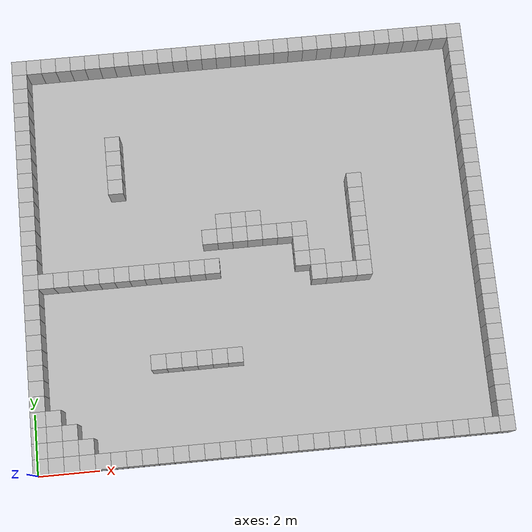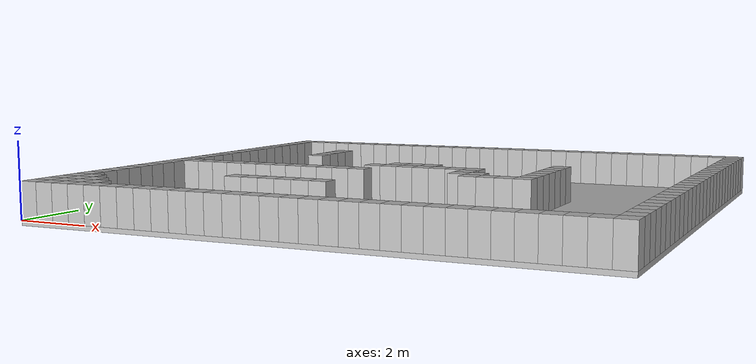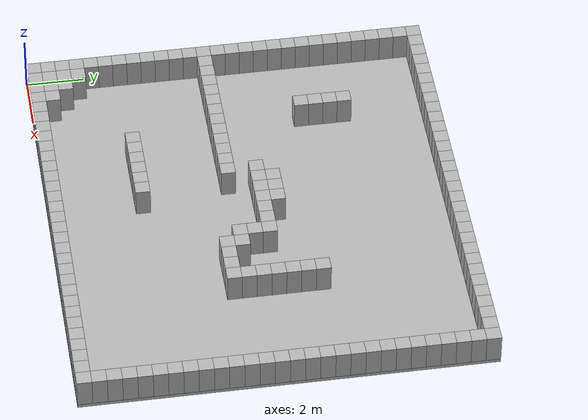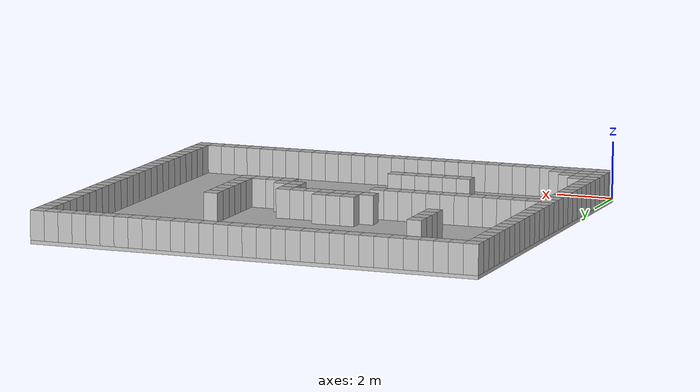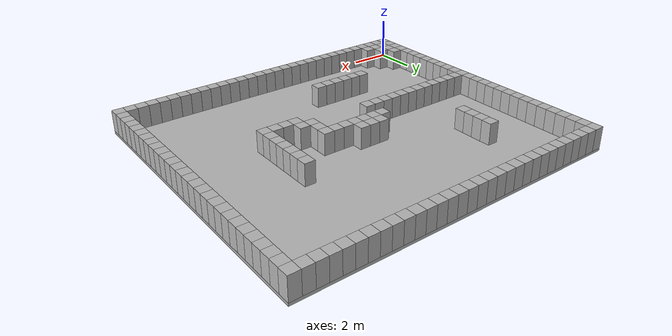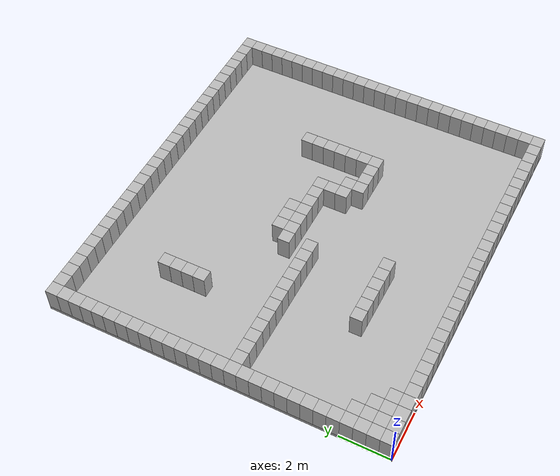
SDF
<sdf version="1.5">
  <model name="map">
    <static>1</static>
    <link name="map">
      <collision name="floor">
        <pose>7.75 7.0 -0.0625 0 0 0</pose>
        <geometry>
          <box>
            <size>15.5 14.0 0.125</size>
          </box>
        </geometry>
      </collision>
      <visual name="floor">
        <pose>7.75 7.0 -0.0625 0 0 0</pose>
        <geometry>
          <box>
            <size>15.5 14.0 0.125</size>
          </box>
        </geometry>
      </visual>
      <collision name="box_0_0">
        <pose>0.25 0.25 0.5 0 0 0</pose>
        <geometry>
          <box>
            <size>0.5 0.5 1.0</size>
          </box>
        </geometry>
      </collision>
      <visual name="box_0_0">
        <pose>0.25 0.25 0.5 0 0 0</pose>
        <geometry>
          <box>
            <size>0.5 0.5 1.0</size>
          </box>
        </geometry>
      </visual>
      <collision name="box_0_1">
        <pose>0.25 0.75 0.5 0 0 0</pose>
        <geometry>
          <box>
            <size>0.5 0.5 1.0</size>
          </box>
        </geometry>
      </collision>
      <visual name="box_0_1">
        <pose>0.25 0.75 0.5 0 0 0</pose>
        <geometry>
          <box>
            <size>0.5 0.5 1.0</size>
          </box>
        </geometry>
      </visual>
      <collision name="box_0_2">
        <pose>0.25 1.25 0.5 0 0 0</pose>
        <geometry>
          <box>
            <size>0.5 0.5 1.0</size>
          </box>
        </geometry>
      </collision>
      <visual name="box_0_2">
        <pose>0.25 1.25 0.5 0 0 0</pose>
        <geometry>
          <box>
            <size>0.5 0.5 1.0</size>
          </box>
        </geometry>
      </visual>
      <collision name="box_0_3">
        <pose>0.25 1.75 0.5 0 0 0</pose>
        <geometry>
          <box>
            <size>0.5 0.5 1.0</size>
          </box>
        </geometry>
      </collision>
      <visual name="box_0_3">
        <pose>0.25 1.75 0.5 0 0 0</pose>
        <geometry>
          <box>
            <size>0.5 0.5 1.0</size>
          </box>
        </geometry>
      </visual>
      <collision name="box_0_4">
        <pose>0.25 2.25 0.5 0 0 0</pose>
        <geometry>
          <box>
            <size>0.5 0.5 1.0</size>
          </box>
        </geometry>
      </collision>
      <visual name="box_0_4">
        <pose>0.25 2.25 0.5 0 0 0</pose>
        <geometry>
          <box>
            <size>0.5 0.5 1.0</size>
          </box>
        </geometry>
      </visual>
      <collision name="box_0_5">
        <pose>0.25 2.75 0.5 0 0 0</pose>
        <geometry>
          <box>
            <size>0.5 0.5 1.0</size>
          </box>
        </geometry>
      </collision>
      <visual name="box_0_5">
        <pose>0.25 2.75 0.5 0 0 0</pose>
        <geometry>
          <box>
            <size>0.5 0.5 1.0</size>
          </box>
        </geometry>
      </visual>
      <collision name="box_0_6">
        <pose>0.25 3.25 0.5 0 0 0</pose>
        <geometry>
          <box>
            <size>0.5 0.5 1.0</size>
          </box>
        </geometry>
      </collision>
      <visual name="box_0_6">
        <pose>0.25 3.25 0.5 0 0 0</pose>
        <geometry>
          <box>
            <size>0.5 0.5 1.0</size>
          </box>
        </geometry>
      </visual>
      <collision name="box_0_7">
        <pose>0.25 3.75 0.5 0 0 0</pose>
        <geometry>
          <box>
            <size>0.5 0.5 1.0</size>
          </box>
        </geometry>
      </collision>
      <visual name="box_0_7">
        <pose>0.25 3.75 0.5 0 0 0</pose>
        <geometry>
          <box>
            <size>0.5 0.5 1.0</size>
          </box>
        </geometry>
      </visual>
      <collision name="box_0_8">
        <pose>0.25 4.25 0.5 0 0 0</pose>
        <geometry>
          <box>
            <size>0.5 0.5 1.0</size>
          </box>
        </geometry>
      </collision>
      <visual name="box_0_8">
        <pose>0.25 4.25 0.5 0 0 0</pose>
        <geometry>
          <box>
            <size>0.5 0.5 1.0</size>
          </box>
        </geometry>
      </visual>
      <collision name="box_0_9">
        <pose>0.25 4.75 0.5 0 0 0</pose>
        <geometry>
          <box>
            <size>0.5 0.5 1.0</size>
          </box>
        </geometry>
      </collision>
      <visual name="box_0_9">
        <pose>0.25 4.75 0.5 0 0 0</pose>
        <geometry>
          <box>
            <size>0.5 0.5 1.0</size>
          </box>
        </geometry>
      </visual>
      <collision name="box_0_10">
        <pose>0.25 5.25 0.5 0 0 0</pose>
        <geometry>
          <box>
            <size>0.5 0.5 1.0</size>
          </box>
        </geometry>
      </collision>
      <visual name="box_0_10">
        <pose>0.25 5.25 0.5 0 0 0</pose>
        <geometry>
          <box>
            <size>0.5 0.5 1.0</size>
          </box>
        </geometry>
      </visual>
      <collision name="box_0_11">
        <pose>0.25 5.75 0.5 0 0 0</pose>
        <geometry>
          <box>
            <size>0.5 0.5 1.0</size>
          </box>
        </geometry>
      </collision>
      <visual name="box_0_11">
        <pose>0.25 5.75 0.5 0 0 0</pose>
        <geometry>
          <box>
            <size>0.5 0.5 1.0</size>
          </box>
        </geometry>
      </visual>
      <collision name="box_0_12">
        <pose>0.25 6.25 0.5 0 0 0</pose>
        <geometry>
          <box>
            <size>0.5 0.5 1.0</size>
          </box>
        </geometry>
      </collision>
      <visual name="box_0_12">
        <pose>0.25 6.25 0.5 0 0 0</pose>
        <geometry>
          <box>
            <size>0.5 0.5 1.0</size>
          </box>
        </geometry>
      </visual>
      <collision name="box_0_13">
        <pose>0.25 6.75 0.5 0 0 0</pose>
        <geometry>
          <box>
            <size>0.5 0.5 1.0</size>
          </box>
        </geometry>
      </collision>
      <visual name="box_0_13">
        <pose>0.25 6.75 0.5 0 0 0</pose>
        <geometry>
          <box>
            <size>0.5 0.5 1.0</size>
          </box>
        </geometry>
      </visual>
      <collision name="box_0_14">
        <pose>0.25 7.25 0.5 0 0 0</pose>
        <geometry>
          <box>
            <size>0.5 0.5 1.0</size>
          </box>
        </geometry>
      </collision>
      <visual name="box_0_14">
        <pose>0.25 7.25 0.5 0 0 0</pose>
        <geometry>
          <box>
            <size>0.5 0.5 1.0</size>
          </box>
        </geometry>
      </visual>
      <collision name="box_0_15">
        <pose>0.25 7.75 0.5 0 0 0</pose>
        <geometry>
          <box>
            <size>0.5 0.5 1.0</size>
          </box>
        </geometry>
      </collision>
      <visual name="box_0_15">
        <pose>0.25 7.75 0.5 0 0 0</pose>
        <geometry>
          <box>
            <size>0.5 0.5 1.0</size>
          </box>
        </geometry>
      </visual>
      <collision name="box_0_16">
        <pose>0.25 8.25 0.5 0 0 0</pose>
        <geometry>
          <box>
            <size>0.5 0.5 1.0</size>
          </box>
        </geometry>
      </collision>
      <visual name="box_0_16">
        <pose>0.25 8.25 0.5 0 0 0</pose>
        <geometry>
          <box>
            <size>0.5 0.5 1.0</size>
          </box>
        </geometry>
      </visual>
      <collision name="box_0_17">
        <pose>0.25 8.75 0.5 0 0 0</pose>
        <geometry>
          <box>
            <size>0.5 0.5 1.0</size>
          </box>
        </geometry>
      </collision>
      <visual name="box_0_17">
        <pose>0.25 8.75 0.5 0 0 0</pose>
        <geometry>
          <box>
            <size>0.5 0.5 1.0</size>
          </box>
        </geometry>
      </visual>
      <collision name="box_0_18">
        <pose>0.25 9.25 0.5 0 0 0</pose>
        <geometry>
          <box>
            <size>0.5 0.5 1.0</size>
          </box>
        </geometry>
      </collision>
      <visual name="box_0_18">
        <pose>0.25 9.25 0.5 0 0 0</pose>
        <geometry>
          <box>
            <size>0.5 0.5 1.0</size>
          </box>
        </geometry>
      </visual>
      <collision name="box_0_19">
        <pose>0.25 9.75 0.5 0 0 0</pose>
        <geometry>
          <box>
            <size>0.5 0.5 1.0</size>
          </box>
        </geometry>
      </collision>
      <visual name="box_0_19">
        <pose>0.25 9.75 0.5 0 0 0</pose>
        <geometry>
          <box>
            <size>0.5 0.5 1.0</size>
          </box>
        </geometry>
      </visual>
      <collision name="box_0_20">
        <pose>0.25 10.25 0.5 0 0 0</pose>
        <geometry>
          <box>
            <size>0.5 0.5 1.0</size>
          </box>
        </geometry>
      </collision>
      <visual name="box_0_20">
        <pose>0.25 10.25 0.5 0 0 0</pose>
        <geometry>
          <box>
            <size>0.5 0.5 1.0</size>
          </box>
        </geometry>
      </visual>
      <collision name="box_0_21">
        <pose>0.25 10.75 0.5 0 0 0</pose>
        <geometry>
          <box>
            <size>0.5 0.5 1.0</size>
          </box>
        </geometry>
      </collision>
      <visual name="box_0_21">
        <pose>0.25 10.75 0.5 0 0 0</pose>
        <geometry>
          <box>
            <size>0.5 0.5 1.0</size>
          </box>
        </geometry>
      </visual>
      <collision name="box_0_22">
        <pose>0.25 11.25 0.5 0 0 0</pose>
        <geometry>
          <box>
            <size>0.5 0.5 1.0</size>
          </box>
        </geometry>
      </collision>
      <visual name="box_0_22">
        <pose>0.25 11.25 0.5 0 0 0</pose>
        <geometry>
          <box>
            <size>0.5 0.5 1.0</size>
          </box>
        </geometry>
      </visual>
      <collision name="box_0_23">
        <pose>0.25 11.75 0.5 0 0 0</pose>
        <geometry>
          <box>
            <size>0.5 0.5 1.0</size>
          </box>
        </geometry>
      </collision>
      <visual name="box_0_23">
        <pose>0.25 11.75 0.5 0 0 0</pose>
        <geometry>
          <box>
            <size>0.5 0.5 1.0</size>
          </box>
        </geometry>
      </visual>
      <collision name="box_0_24">
        <pose>0.25 12.25 0.5 0 0 0</pose>
        <geometry>
          <box>
            <size>0.5 0.5 1.0</size>
          </box>
        </geometry>
      </collision>
      <visual name="box_0_24">
        <pose>0.25 12.25 0.5 0 0 0</pose>
        <geometry>
          <box>
            <size>0.5 0.5 1.0</size>
          </box>
        </geometry>
      </visual>
      <collision name="box_0_25">
        <pose>0.25 12.75 0.5 0 0 0</pose>
        <geometry>
          <box>
            <size>0.5 0.5 1.0</size>
          </box>
        </geometry>
      </collision>
      <visual name="box_0_25">
        <pose>0.25 12.75 0.5 0 0 0</pose>
        <geometry>
          <box>
            <size>0.5 0.5 1.0</size>
          </box>
        </geometry>
      </visual>
      <collision name="box_0_26">
        <pose>0.25 13.25 0.5 0 0 0</pose>
        <geometry>
          <box>
            <size>0.5 0.5 1.0</size>
          </box>
        </geometry>
      </collision>
      <visual name="box_0_26">
        <pose>0.25 13.25 0.5 0 0 0</pose>
        <geometry>
          <box>
            <size>0.5 0.5 1.0</size>
          </box>
        </geometry>
      </visual>
      <collision name="box_0_27">
        <pose>0.25 13.75 0.5 0 0 0</pose>
        <geometry>
          <box>
            <size>0.5 0.5 1.0</size>
          </box>
        </geometry>
      </collision>
      <visual name="box_0_27">
        <pose>0.25 13.75 0.5 0 0 0</pose>
        <geometry>
          <box>
            <size>0.5 0.5 1.0</size>
          </box>
        </geometry>
      </visual>
      <collision name="box_1_0">
        <pose>0.75 0.25 0.5 0 0 0</pose>
        <geometry>
          <box>
            <size>0.5 0.5 1.0</size>
          </box>
        </geometry>
      </collision>
      <visual name="box_1_0">
        <pose>0.75 0.25 0.5 0 0 0</pose>
        <geometry>
          <box>
            <size>0.5 0.5 1.0</size>
          </box>
        </geometry>
      </visual>
      <collision name="box_1_1">
        <pose>0.75 0.75 0.5 0 0 0</pose>
        <geometry>
          <box>
            <size>0.5 0.5 1.0</size>
          </box>
        </geometry>
      </collision>
      <visual name="box_1_1">
        <pose>0.75 0.75 0.5 0 0 0</pose>
        <geometry>
          <box>
            <size>0.5 0.5 1.0</size>
          </box>
        </geometry>
      </visual>
      <collision name="box_1_2">
        <pose>0.75 1.25 0.5 0 0 0</pose>
        <geometry>
          <box>
            <size>0.5 0.5 1.0</size>
          </box>
        </geometry>
      </collision>
      <visual name="box_1_2">
        <pose>0.75 1.25 0.5 0 0 0</pose>
        <geometry>
          <box>
            <size>0.5 0.5 1.0</size>
          </box>
        </geometry>
      </visual>
      <collision name="box_1_3">
        <pose>0.75 1.75 0.5 0 0 0</pose>
        <geometry>
          <box>
            <size>0.5 0.5 1.0</size>
          </box>
        </geometry>
      </collision>
      <visual name="box_1_3">
        <pose>0.75 1.75 0.5 0 0 0</pose>
        <geometry>
          <box>
            <size>0.5 0.5 1.0</size>
          </box>
        </geometry>
      </visual>
      <collision name="box_1_12">
        <pose>0.75 6.25 0.5 0 0 0</pose>
        <geometry>
          <box>
            <size>0.5 0.5 1.0</size>
          </box>
        </geometry>
      </collision>
      <visual name="box_1_12">
        <pose>0.75 6.25 0.5 0 0 0</pose>
        <geometry>
          <box>
            <size>0.5 0.5 1.0</size>
          </box>
        </geometry>
      </visual>
      <collision name="box_1_27">
        <pose>0.75 13.75 0.5 0 0 0</pose>
        <geometry>
          <box>
            <size>0.5 0.5 1.0</size>
          </box>
        </geometry>
      </collision>
      <visual name="box_1_27">
        <pose>0.75 13.75 0.5 0 0 0</pose>
        <geometry>
          <box>
            <size>0.5 0.5 1.0</size>
          </box>
        </geometry>
      </visual>
      <collision name="box_2_0">
        <pose>1.25 0.25 0.5 0 0 0</pose>
        <geometry>
          <box>
            <size>0.5 0.5 1.0</size>
          </box>
        </geometry>
      </collision>
      <visual name="box_2_0">
        <pose>1.25 0.25 0.5 0 0 0</pose>
        <geometry>
          <box>
            <size>0.5 0.5 1.0</size>
          </box>
        </geometry>
      </visual>
      <collision name="box_2_1">
        <pose>1.25 0.75 0.5 0 0 0</pose>
        <geometry>
          <box>
            <size>0.5 0.5 1.0</size>
          </box>
        </geometry>
      </collision>
      <visual name="box_2_1">
        <pose>1.25 0.75 0.5 0 0 0</pose>
        <geometry>
          <box>
            <size>0.5 0.5 1.0</size>
          </box>
        </geometry>
      </visual>
      <collision name="box_2_2">
        <pose>1.25 1.25 0.5 0 0 0</pose>
        <geometry>
          <box>
            <size>0.5 0.5 1.0</size>
          </box>
        </geometry>
      </collision>
      <visual name="box_2_2">
        <pose>1.25 1.25 0.5 0 0 0</pose>
        <geometry>
          <box>
            <size>0.5 0.5 1.0</size>
          </box>
        </geometry>
      </visual>
      <collision name="box_2_12">
        <pose>1.25 6.25 0.5 0 0 0</pose>
        <geometry>
          <box>
            <size>0.5 0.5 1.0</size>
          </box>
        </geometry>
      </collision>
      <visual name="box_2_12">
        <pose>1.25 6.25 0.5 0 0 0</pose>
        <geometry>
          <box>
            <size>0.5 0.5 1.0</size>
          </box>
        </geometry>
      </visual>
      <collision name="box_2_27">
        <pose>1.25 13.75 0.5 0 0 0</pose>
        <geometry>
          <box>
            <size>0.5 0.5 1.0</size>
          </box>
        </geometry>
      </collision>
      <visual name="box_2_27">
        <pose>1.25 13.75 0.5 0 0 0</pose>
        <geometry>
          <box>
            <size>0.5 0.5 1.0</size>
          </box>
        </geometry>
      </visual>
      <collision name="box_3_0">
        <pose>1.75 0.25 0.5 0 0 0</pose>
        <geometry>
          <box>
            <size>0.5 0.5 1.0</size>
          </box>
        </geometry>
      </collision>
      <visual name="box_3_0">
        <pose>1.75 0.25 0.5 0 0 0</pose>
        <geometry>
          <box>
            <size>0.5 0.5 1.0</size>
          </box>
        </geometry>
      </visual>
      <collision name="box_3_1">
        <pose>1.75 0.75 0.5 0 0 0</pose>
        <geometry>
          <box>
            <size>0.5 0.5 1.0</size>
          </box>
        </geometry>
      </collision>
      <visual name="box_3_1">
        <pose>1.75 0.75 0.5 0 0 0</pose>
        <geometry>
          <box>
            <size>0.5 0.5 1.0</size>
          </box>
        </geometry>
      </visual>
      <collision name="box_3_12">
        <pose>1.75 6.25 0.5 0 0 0</pose>
        <geometry>
          <box>
            <size>0.5 0.5 1.0</size>
          </box>
        </geometry>
      </collision>
      <visual name="box_3_12">
        <pose>1.75 6.25 0.5 0 0 0</pose>
        <geometry>
          <box>
            <size>0.5 0.5 1.0</size>
          </box>
        </geometry>
      </visual>
      <collision name="box_3_27">
        <pose>1.75 13.75 0.5 0 0 0</pose>
        <geometry>
          <box>
            <size>0.5 0.5 1.0</size>
          </box>
        </geometry>
      </collision>
      <visual name="box_3_27">
        <pose>1.75 13.75 0.5 0 0 0</pose>
        <geometry>
          <box>
            <size>0.5 0.5 1.0</size>
          </box>
        </geometry>
      </visual>
      <collision name="box_4_0">
        <pose>2.25 0.25 0.5 0 0 0</pose>
        <geometry>
          <box>
            <size>0.5 0.5 1.0</size>
          </box>
        </geometry>
      </collision>
      <visual name="box_4_0">
        <pose>2.25 0.25 0.5 0 0 0</pose>
        <geometry>
          <box>
            <size>0.5 0.5 1.0</size>
          </box>
        </geometry>
      </visual>
      <collision name="box_4_12">
        <pose>2.25 6.25 0.5 0 0 0</pose>
        <geometry>
          <box>
            <size>0.5 0.5 1.0</size>
          </box>
        </geometry>
      </collision>
      <visual name="box_4_12">
        <pose>2.25 6.25 0.5 0 0 0</pose>
        <geometry>
          <box>
            <size>0.5 0.5 1.0</size>
          </box>
        </geometry>
      </visual>
      <collision name="box_4_27">
        <pose>2.25 13.75 0.5 0 0 0</pose>
        <geometry>
          <box>
            <size>0.5 0.5 1.0</size>
          </box>
        </geometry>
      </collision>
      <visual name="box_4_27">
        <pose>2.25 13.75 0.5 0 0 0</pose>
        <geometry>
          <box>
            <size>0.5 0.5 1.0</size>
          </box>
        </geometry>
      </visual>
      <collision name="box_5_0">
        <pose>2.75 0.25 0.5 0 0 0</pose>
        <geometry>
          <box>
            <size>0.5 0.5 1.0</size>
          </box>
        </geometry>
      </collision>
      <visual name="box_5_0">
        <pose>2.75 0.25 0.5 0 0 0</pose>
        <geometry>
          <box>
            <size>0.5 0.5 1.0</size>
          </box>
        </geometry>
      </visual>
      <collision name="box_5_12">
        <pose>2.75 6.25 0.5 0 0 0</pose>
        <geometry>
          <box>
            <size>0.5 0.5 1.0</size>
          </box>
        </geometry>
      </collision>
      <visual name="box_5_12">
        <pose>2.75 6.25 0.5 0 0 0</pose>
        <geometry>
          <box>
            <size>0.5 0.5 1.0</size>
          </box>
        </geometry>
      </visual>
      <collision name="box_5_27">
        <pose>2.75 13.75 0.5 0 0 0</pose>
        <geometry>
          <box>
            <size>0.5 0.5 1.0</size>
          </box>
        </geometry>
      </collision>
      <visual name="box_5_27">
        <pose>2.75 13.75 0.5 0 0 0</pose>
        <geometry>
          <box>
            <size>0.5 0.5 1.0</size>
          </box>
        </geometry>
      </visual>
      <collision name="box_6_0">
        <pose>3.25 0.25 0.5 0 0 0</pose>
        <geometry>
          <box>
            <size>0.5 0.5 1.0</size>
          </box>
        </geometry>
      </collision>
      <visual name="box_6_0">
        <pose>3.25 0.25 0.5 0 0 0</pose>
        <geometry>
          <box>
            <size>0.5 0.5 1.0</size>
          </box>
        </geometry>
      </visual>
      <collision name="box_6_12">
        <pose>3.25 6.25 0.5 0 0 0</pose>
        <geometry>
          <box>
            <size>0.5 0.5 1.0</size>
          </box>
        </geometry>
      </collision>
      <visual name="box_6_12">
        <pose>3.25 6.25 0.5 0 0 0</pose>
        <geometry>
          <box>
            <size>0.5 0.5 1.0</size>
          </box>
        </geometry>
      </visual>
      <collision name="box_6_18">
        <pose>3.25 9.25 0.5 0 0 0</pose>
        <geometry>
          <box>
            <size>0.5 0.5 1.0</size>
          </box>
        </geometry>
      </collision>
      <visual name="box_6_18">
        <pose>3.25 9.25 0.5 0 0 0</pose>
        <geometry>
          <box>
            <size>0.5 0.5 1.0</size>
          </box>
        </geometry>
      </visual>
      <collision name="box_6_19">
        <pose>3.25 9.75 0.5 0 0 0</pose>
        <geometry>
          <box>
            <size>0.5 0.5 1.0</size>
          </box>
        </geometry>
      </collision>
      <visual name="box_6_19">
        <pose>3.25 9.75 0.5 0 0 0</pose>
        <geometry>
          <box>
            <size>0.5 0.5 1.0</size>
          </box>
        </geometry>
      </visual>
      <collision name="box_6_20">
        <pose>3.25 10.25 0.5 0 0 0</pose>
        <geometry>
          <box>
            <size>0.5 0.5 1.0</size>
          </box>
        </geometry>
      </collision>
      <visual name="box_6_20">
        <pose>3.25 10.25 0.5 0 0 0</pose>
        <geometry>
          <box>
            <size>0.5 0.5 1.0</size>
          </box>
        </geometry>
      </visual>
      <collision name="box_6_21">
        <pose>3.25 10.75 0.5 0 0 0</pose>
        <geometry>
          <box>
            <size>0.5 0.5 1.0</size>
          </box>
        </geometry>
      </collision>
      <visual name="box_6_21">
        <pose>3.25 10.75 0.5 0 0 0</pose>
        <geometry>
          <box>
            <size>0.5 0.5 1.0</size>
          </box>
        </geometry>
      </visual>
      <collision name="box_6_27">
        <pose>3.25 13.75 0.5 0 0 0</pose>
        <geometry>
          <box>
            <size>0.5 0.5 1.0</size>
          </box>
        </geometry>
      </collision>
      <visual name="box_6_27">
        <pose>3.25 13.75 0.5 0 0 0</pose>
        <geometry>
          <box>
            <size>0.5 0.5 1.0</size>
          </box>
        </geometry>
      </visual>
      <collision name="box_7_0">
        <pose>3.75 0.25 0.5 0 0 0</pose>
        <geometry>
          <box>
            <size>0.5 0.5 1.0</size>
          </box>
        </geometry>
      </collision>
      <visual name="box_7_0">
        <pose>3.75 0.25 0.5 0 0 0</pose>
        <geometry>
          <box>
            <size>0.5 0.5 1.0</size>
          </box>
        </geometry>
      </visual>
      <collision name="box_7_12">
        <pose>3.75 6.25 0.5 0 0 0</pose>
        <geometry>
          <box>
            <size>0.5 0.5 1.0</size>
          </box>
        </geometry>
      </collision>
      <visual name="box_7_12">
        <pose>3.75 6.25 0.5 0 0 0</pose>
        <geometry>
          <box>
            <size>0.5 0.5 1.0</size>
          </box>
        </geometry>
      </visual>
      <collision name="box_7_27">
        <pose>3.75 13.75 0.5 0 0 0</pose>
        <geometry>
          <box>
            <size>0.5 0.5 1.0</size>
          </box>
        </geometry>
      </collision>
      <visual name="box_7_27">
        <pose>3.75 13.75 0.5 0 0 0</pose>
        <geometry>
          <box>
            <size>0.5 0.5 1.0</size>
          </box>
        </geometry>
      </visual>
      <collision name="box_8_0">
        <pose>4.25 0.25 0.5 0 0 0</pose>
        <geometry>
          <box>
            <size>0.5 0.5 1.0</size>
          </box>
        </geometry>
      </collision>
      <visual name="box_8_0">
        <pose>4.25 0.25 0.5 0 0 0</pose>
        <geometry>
          <box>
            <size>0.5 0.5 1.0</size>
          </box>
        </geometry>
      </visual>
      <collision name="box_8_6">
        <pose>4.25 3.25 0.5 0 0 0</pose>
        <geometry>
          <box>
            <size>0.5 0.5 1.0</size>
          </box>
        </geometry>
      </collision>
      <visual name="box_8_6">
        <pose>4.25 3.25 0.5 0 0 0</pose>
        <geometry>
          <box>
            <size>0.5 0.5 1.0</size>
          </box>
        </geometry>
      </visual>
      <collision name="box_8_12">
        <pose>4.25 6.25 0.5 0 0 0</pose>
        <geometry>
          <box>
            <size>0.5 0.5 1.0</size>
          </box>
        </geometry>
      </collision>
      <visual name="box_8_12">
        <pose>4.25 6.25 0.5 0 0 0</pose>
        <geometry>
          <box>
            <size>0.5 0.5 1.0</size>
          </box>
        </geometry>
      </visual>
      <collision name="box_8_27">
        <pose>4.25 13.75 0.5 0 0 0</pose>
        <geometry>
          <box>
            <size>0.5 0.5 1.0</size>
          </box>
        </geometry>
      </collision>
      <visual name="box_8_27">
        <pose>4.25 13.75 0.5 0 0 0</pose>
        <geometry>
          <box>
            <size>0.5 0.5 1.0</size>
          </box>
        </geometry>
      </visual>
      <collision name="box_9_0">
        <pose>4.75 0.25 0.5 0 0 0</pose>
        <geometry>
          <box>
            <size>0.5 0.5 1.0</size>
          </box>
        </geometry>
      </collision>
      <visual name="box_9_0">
        <pose>4.75 0.25 0.5 0 0 0</pose>
        <geometry>
          <box>
            <size>0.5 0.5 1.0</size>
          </box>
        </geometry>
      </visual>
      <collision name="box_9_6">
        <pose>4.75 3.25 0.5 0 0 0</pose>
        <geometry>
          <box>
            <size>0.5 0.5 1.0</size>
          </box>
        </geometry>
      </collision>
      <visual name="box_9_6">
        <pose>4.75 3.25 0.5 0 0 0</pose>
        <geometry>
          <box>
            <size>0.5 0.5 1.0</size>
          </box>
        </geometry>
      </visual>
      <collision name="box_9_12">
        <pose>4.75 6.25 0.5 0 0 0</pose>
        <geometry>
          <box>
            <size>0.5 0.5 1.0</size>
          </box>
        </geometry>
      </collision>
      <visual name="box_9_12">
        <pose>4.75 6.25 0.5 0 0 0</pose>
        <geometry>
          <box>
            <size>0.5 0.5 1.0</size>
          </box>
        </geometry>
      </visual>
      <collision name="box_9_27">
        <pose>4.75 13.75 0.5 0 0 0</pose>
        <geometry>
          <box>
            <size>0.5 0.5 1.0</size>
          </box>
        </geometry>
      </collision>
      <visual name="box_9_27">
        <pose>4.75 13.75 0.5 0 0 0</pose>
        <geometry>
          <box>
            <size>0.5 0.5 1.0</size>
          </box>
        </geometry>
      </visual>
      <collision name="box_10_0">
        <pose>5.25 0.25 0.5 0 0 0</pose>
        <geometry>
          <box>
            <size>0.5 0.5 1.0</size>
          </box>
        </geometry>
      </collision>
      <visual name="box_10_0">
        <pose>5.25 0.25 0.5 0 0 0</pose>
        <geometry>
          <box>
            <size>0.5 0.5 1.0</size>
          </box>
        </geometry>
      </visual>
      <collision name="box_10_6">
        <pose>5.25 3.25 0.5 0 0 0</pose>
        <geometry>
          <box>
            <size>0.5 0.5 1.0</size>
          </box>
        </geometry>
      </collision>
      <visual name="box_10_6">
        <pose>5.25 3.25 0.5 0 0 0</pose>
        <geometry>
          <box>
            <size>0.5 0.5 1.0</size>
          </box>
        </geometry>
      </visual>
      <collision name="box_10_12">
        <pose>5.25 6.25 0.5 0 0 0</pose>
        <geometry>
          <box>
            <size>0.5 0.5 1.0</size>
          </box>
        </geometry>
      </collision>
      <visual name="box_10_12">
        <pose>5.25 6.25 0.5 0 0 0</pose>
        <geometry>
          <box>
            <size>0.5 0.5 1.0</size>
          </box>
        </geometry>
      </visual>
      <collision name="box_10_27">
        <pose>5.25 13.75 0.5 0 0 0</pose>
        <geometry>
          <box>
            <size>0.5 0.5 1.0</size>
          </box>
        </geometry>
      </collision>
      <visual name="box_10_27">
        <pose>5.25 13.75 0.5 0 0 0</pose>
        <geometry>
          <box>
            <size>0.5 0.5 1.0</size>
          </box>
        </geometry>
      </visual>
      <collision name="box_11_0">
        <pose>5.75 0.25 0.5 0 0 0</pose>
        <geometry>
          <box>
            <size>0.5 0.5 1.0</size>
          </box>
        </geometry>
      </collision>
      <visual name="box_11_0">
        <pose>5.75 0.25 0.5 0 0 0</pose>
        <geometry>
          <box>
            <size>0.5 0.5 1.0</size>
          </box>
        </geometry>
      </visual>
      <collision name="box_11_6">
        <pose>5.75 3.25 0.5 0 0 0</pose>
        <geometry>
          <box>
            <size>0.5 0.5 1.0</size>
          </box>
        </geometry>
      </collision>
      <visual name="box_11_6">
        <pose>5.75 3.25 0.5 0 0 0</pose>
        <geometry>
          <box>
            <size>0.5 0.5 1.0</size>
          </box>
        </geometry>
      </visual>
      <collision name="box_11_12">
        <pose>5.75 6.25 0.5 0 0 0</pose>
        <geometry>
          <box>
            <size>0.5 0.5 1.0</size>
          </box>
        </geometry>
      </collision>
      <visual name="box_11_12">
        <pose>5.75 6.25 0.5 0 0 0</pose>
        <geometry>
          <box>
            <size>0.5 0.5 1.0</size>
          </box>
        </geometry>
      </visual>
      <collision name="box_11_27">
        <pose>5.75 13.75 0.5 0 0 0</pose>
        <geometry>
          <box>
            <size>0.5 0.5 1.0</size>
          </box>
        </geometry>
      </collision>
      <visual name="box_11_27">
        <pose>5.75 13.75 0.5 0 0 0</pose>
        <geometry>
          <box>
            <size>0.5 0.5 1.0</size>
          </box>
        </geometry>
      </visual>
      <collision name="box_12_0">
        <pose>6.25 0.25 0.5 0 0 0</pose>
        <geometry>
          <box>
            <size>0.5 0.5 1.0</size>
          </box>
        </geometry>
      </collision>
      <visual name="box_12_0">
        <pose>6.25 0.25 0.5 0 0 0</pose>
        <geometry>
          <box>
            <size>0.5 0.5 1.0</size>
          </box>
        </geometry>
      </visual>
      <collision name="box_12_6">
        <pose>6.25 3.25 0.5 0 0 0</pose>
        <geometry>
          <box>
            <size>0.5 0.5 1.0</size>
          </box>
        </geometry>
      </collision>
      <visual name="box_12_6">
        <pose>6.25 3.25 0.5 0 0 0</pose>
        <geometry>
          <box>
            <size>0.5 0.5 1.0</size>
          </box>
        </geometry>
      </visual>
      <collision name="box_12_12">
        <pose>6.25 6.25 0.5 0 0 0</pose>
        <geometry>
          <box>
            <size>0.5 0.5 1.0</size>
          </box>
        </geometry>
      </collision>
      <visual name="box_12_12">
        <pose>6.25 6.25 0.5 0 0 0</pose>
        <geometry>
          <box>
            <size>0.5 0.5 1.0</size>
          </box>
        </geometry>
      </visual>
      <collision name="box_12_14">
        <pose>6.25 7.25 0.5 0 0 0</pose>
        <geometry>
          <box>
            <size>0.5 0.5 1.0</size>
          </box>
        </geometry>
      </collision>
      <visual name="box_12_14">
        <pose>6.25 7.25 0.5 0 0 0</pose>
        <geometry>
          <box>
            <size>0.5 0.5 1.0</size>
          </box>
        </geometry>
      </visual>
      <collision name="box_12_27">
        <pose>6.25 13.75 0.5 0 0 0</pose>
        <geometry>
          <box>
            <size>0.5 0.5 1.0</size>
          </box>
        </geometry>
      </collision>
      <visual name="box_12_27">
        <pose>6.25 13.75 0.5 0 0 0</pose>
        <geometry>
          <box>
            <size>0.5 0.5 1.0</size>
          </box>
        </geometry>
      </visual>
      <collision name="box_13_0">
        <pose>6.75 0.25 0.5 0 0 0</pose>
        <geometry>
          <box>
            <size>0.5 0.5 1.0</size>
          </box>
        </geometry>
      </collision>
      <visual name="box_13_0">
        <pose>6.75 0.25 0.5 0 0 0</pose>
        <geometry>
          <box>
            <size>0.5 0.5 1.0</size>
          </box>
        </geometry>
      </visual>
      <collision name="box_13_6">
        <pose>6.75 3.25 0.5 0 0 0</pose>
        <geometry>
          <box>
            <size>0.5 0.5 1.0</size>
          </box>
        </geometry>
      </collision>
      <visual name="box_13_6">
        <pose>6.75 3.25 0.5 0 0 0</pose>
        <geometry>
          <box>
            <size>0.5 0.5 1.0</size>
          </box>
        </geometry>
      </visual>
      <collision name="box_13_14">
        <pose>6.75 7.25 0.5 0 0 0</pose>
        <geometry>
          <box>
            <size>0.5 0.5 1.0</size>
          </box>
        </geometry>
      </collision>
      <visual name="box_13_14">
        <pose>6.75 7.25 0.5 0 0 0</pose>
        <geometry>
          <box>
            <size>0.5 0.5 1.0</size>
          </box>
        </geometry>
      </visual>
      <collision name="box_13_15">
        <pose>6.75 7.75 0.5 0 0 0</pose>
        <geometry>
          <box>
            <size>0.5 0.5 1.0</size>
          </box>
        </geometry>
      </collision>
      <visual name="box_13_15">
        <pose>6.75 7.75 0.5 0 0 0</pose>
        <geometry>
          <box>
            <size>0.5 0.5 1.0</size>
          </box>
        </geometry>
      </visual>
      <collision name="box_13_27">
        <pose>6.75 13.75 0.5 0 0 0</pose>
        <geometry>
          <box>
            <size>0.5 0.5 1.0</size>
          </box>
        </geometry>
      </collision>
      <visual name="box_13_27">
        <pose>6.75 13.75 0.5 0 0 0</pose>
        <geometry>
          <box>
            <size>0.5 0.5 1.0</size>
          </box>
        </geometry>
      </visual>
      <collision name="box_14_0">
        <pose>7.25 0.25 0.5 0 0 0</pose>
        <geometry>
          <box>
            <size>0.5 0.5 1.0</size>
          </box>
        </geometry>
      </collision>
      <visual name="box_14_0">
        <pose>7.25 0.25 0.5 0 0 0</pose>
        <geometry>
          <box>
            <size>0.5 0.5 1.0</size>
          </box>
        </geometry>
      </visual>
      <collision name="box_14_14">
        <pose>7.25 7.25 0.5 0 0 0</pose>
        <geometry>
          <box>
            <size>0.5 0.5 1.0</size>
          </box>
        </geometry>
      </collision>
      <visual name="box_14_14">
        <pose>7.25 7.25 0.5 0 0 0</pose>
        <geometry>
          <box>
            <size>0.5 0.5 1.0</size>
          </box>
        </geometry>
      </visual>
      <collision name="box_14_15">
        <pose>7.25 7.75 0.5 0 0 0</pose>
        <geometry>
          <box>
            <size>0.5 0.5 1.0</size>
          </box>
        </geometry>
      </collision>
      <visual name="box_14_15">
        <pose>7.25 7.75 0.5 0 0 0</pose>
        <geometry>
          <box>
            <size>0.5 0.5 1.0</size>
          </box>
        </geometry>
      </visual>
      <collision name="box_14_27">
        <pose>7.25 13.75 0.5 0 0 0</pose>
        <geometry>
          <box>
            <size>0.5 0.5 1.0</size>
          </box>
        </geometry>
      </collision>
      <visual name="box_14_27">
        <pose>7.25 13.75 0.5 0 0 0</pose>
        <geometry>
          <box>
            <size>0.5 0.5 1.0</size>
          </box>
        </geometry>
      </visual>
      <collision name="box_15_0">
        <pose>7.75 0.25 0.5 0 0 0</pose>
        <geometry>
          <box>
            <size>0.5 0.5 1.0</size>
          </box>
        </geometry>
      </collision>
      <visual name="box_15_0">
        <pose>7.75 0.25 0.5 0 0 0</pose>
        <geometry>
          <box>
            <size>0.5 0.5 1.0</size>
          </box>
        </geometry>
      </visual>
      <collision name="box_15_14">
        <pose>7.75 7.25 0.5 0 0 0</pose>
        <geometry>
          <box>
            <size>0.5 0.5 1.0</size>
          </box>
        </geometry>
      </collision>
      <visual name="box_15_14">
        <pose>7.75 7.25 0.5 0 0 0</pose>
        <geometry>
          <box>
            <size>0.5 0.5 1.0</size>
          </box>
        </geometry>
      </visual>
      <collision name="box_15_15">
        <pose>7.75 7.75 0.5 0 0 0</pose>
        <geometry>
          <box>
            <size>0.5 0.5 1.0</size>
          </box>
        </geometry>
      </collision>
      <visual name="box_15_15">
        <pose>7.75 7.75 0.5 0 0 0</pose>
        <geometry>
          <box>
            <size>0.5 0.5 1.0</size>
          </box>
        </geometry>
      </visual>
      <collision name="box_15_27">
        <pose>7.75 13.75 0.5 0 0 0</pose>
        <geometry>
          <box>
            <size>0.5 0.5 1.0</size>
          </box>
        </geometry>
      </collision>
      <visual name="box_15_27">
        <pose>7.75 13.75 0.5 0 0 0</pose>
        <geometry>
          <box>
            <size>0.5 0.5 1.0</size>
          </box>
        </geometry>
      </visual>
      <collision name="box_16_0">
        <pose>8.25 0.25 0.5 0 0 0</pose>
        <geometry>
          <box>
            <size>0.5 0.5 1.0</size>
          </box>
        </geometry>
      </collision>
      <visual name="box_16_0">
        <pose>8.25 0.25 0.5 0 0 0</pose>
        <geometry>
          <box>
            <size>0.5 0.5 1.0</size>
          </box>
        </geometry>
      </visual>
      <collision name="box_16_14">
        <pose>8.25 7.25 0.5 0 0 0</pose>
        <geometry>
          <box>
            <size>0.5 0.5 1.0</size>
          </box>
        </geometry>
      </collision>
      <visual name="box_16_14">
        <pose>8.25 7.25 0.5 0 0 0</pose>
        <geometry>
          <box>
            <size>0.5 0.5 1.0</size>
          </box>
        </geometry>
      </visual>
      <collision name="box_16_27">
        <pose>8.25 13.75 0.5 0 0 0</pose>
        <geometry>
          <box>
            <size>0.5 0.5 1.0</size>
          </box>
        </geometry>
      </collision>
      <visual name="box_16_27">
        <pose>8.25 13.75 0.5 0 0 0</pose>
        <geometry>
          <box>
            <size>0.5 0.5 1.0</size>
          </box>
        </geometry>
      </visual>
      <collision name="box_17_0">
        <pose>8.75 0.25 0.5 0 0 0</pose>
        <geometry>
          <box>
            <size>0.5 0.5 1.0</size>
          </box>
        </geometry>
      </collision>
      <visual name="box_17_0">
        <pose>8.75 0.25 0.5 0 0 0</pose>
        <geometry>
          <box>
            <size>0.5 0.5 1.0</size>
          </box>
        </geometry>
      </visual>
      <collision name="box_17_14">
        <pose>8.75 7.25 0.5 0 0 0</pose>
        <geometry>
          <box>
            <size>0.5 0.5 1.0</size>
          </box>
        </geometry>
      </collision>
      <visual name="box_17_14">
        <pose>8.75 7.25 0.5 0 0 0</pose>
        <geometry>
          <box>
            <size>0.5 0.5 1.0</size>
          </box>
        </geometry>
      </visual>
      <collision name="box_17_27">
        <pose>8.75 13.75 0.5 0 0 0</pose>
        <geometry>
          <box>
            <size>0.5 0.5 1.0</size>
          </box>
        </geometry>
      </collision>
      <visual name="box_17_27">
        <pose>8.75 13.75 0.5 0 0 0</pose>
        <geometry>
          <box>
            <size>0.5 0.5 1.0</size>
          </box>
        </geometry>
      </visual>
      <collision name="box_18_0">
        <pose>9.25 0.25 0.5 0 0 0</pose>
        <geometry>
          <box>
            <size>0.5 0.5 1.0</size>
          </box>
        </geometry>
      </collision>
      <visual name="box_18_0">
        <pose>9.25 0.25 0.5 0 0 0</pose>
        <geometry>
          <box>
            <size>0.5 0.5 1.0</size>
          </box>
        </geometry>
      </visual>
      <collision name="box_18_12">
        <pose>9.25 6.25 0.5 0 0 0</pose>
        <geometry>
          <box>
            <size>0.5 0.5 1.0</size>
          </box>
        </geometry>
      </collision>
      <visual name="box_18_12">
        <pose>9.25 6.25 0.5 0 0 0</pose>
        <geometry>
          <box>
            <size>0.5 0.5 1.0</size>
          </box>
        </geometry>
      </visual>
      <collision name="box_18_13">
        <pose>9.25 6.75 0.5 0 0 0</pose>
        <geometry>
          <box>
            <size>0.5 0.5 1.0</size>
          </box>
        </geometry>
      </collision>
      <visual name="box_18_13">
        <pose>9.25 6.75 0.5 0 0 0</pose>
        <geometry>
          <box>
            <size>0.5 0.5 1.0</size>
          </box>
        </geometry>
      </visual>
      <collision name="box_18_14">
        <pose>9.25 7.25 0.5 0 0 0</pose>
        <geometry>
          <box>
            <size>0.5 0.5 1.0</size>
          </box>
        </geometry>
      </collision>
      <visual name="box_18_14">
        <pose>9.25 7.25 0.5 0 0 0</pose>
        <geometry>
          <box>
            <size>0.5 0.5 1.0</size>
          </box>
        </geometry>
      </visual>
      <collision name="box_18_27">
        <pose>9.25 13.75 0.5 0 0 0</pose>
        <geometry>
          <box>
            <size>0.5 0.5 1.0</size>
          </box>
        </geometry>
      </collision>
      <visual name="box_18_27">
        <pose>9.25 13.75 0.5 0 0 0</pose>
        <geometry>
          <box>
            <size>0.5 0.5 1.0</size>
          </box>
        </geometry>
      </visual>
      <collision name="box_19_0">
        <pose>9.75 0.25 0.5 0 0 0</pose>
        <geometry>
          <box>
            <size>0.5 0.5 1.0</size>
          </box>
        </geometry>
      </collision>
      <visual name="box_19_0">
        <pose>9.75 0.25 0.5 0 0 0</pose>
        <geometry>
          <box>
            <size>0.5 0.5 1.0</size>
          </box>
        </geometry>
      </visual>
      <collision name="box_19_11">
        <pose>9.75 5.75 0.5 0 0 0</pose>
        <geometry>
          <box>
            <size>0.5 0.5 1.0</size>
          </box>
        </geometry>
      </collision>
      <visual name="box_19_11">
        <pose>9.75 5.75 0.5 0 0 0</pose>
        <geometry>
          <box>
            <size>0.5 0.5 1.0</size>
          </box>
        </geometry>
      </visual>
      <collision name="box_19_12">
        <pose>9.75 6.25 0.5 0 0 0</pose>
        <geometry>
          <box>
            <size>0.5 0.5 1.0</size>
          </box>
        </geometry>
      </collision>
      <visual name="box_19_12">
        <pose>9.75 6.25 0.5 0 0 0</pose>
        <geometry>
          <box>
            <size>0.5 0.5 1.0</size>
          </box>
        </geometry>
      </visual>
      <collision name="box_19_27">
        <pose>9.75 13.75 0.5 0 0 0</pose>
        <geometry>
          <box>
            <size>0.5 0.5 1.0</size>
          </box>
        </geometry>
      </collision>
      <visual name="box_19_27">
        <pose>9.75 13.75 0.5 0 0 0</pose>
        <geometry>
          <box>
            <size>0.5 0.5 1.0</size>
          </box>
        </geometry>
      </visual>
      <collision name="box_20_0">
        <pose>10.25 0.25 0.5 0 0 0</pose>
        <geometry>
          <box>
            <size>0.5 0.5 1.0</size>
          </box>
        </geometry>
      </collision>
      <visual name="box_20_0">
        <pose>10.25 0.25 0.5 0 0 0</pose>
        <geometry>
          <box>
            <size>0.5 0.5 1.0</size>
          </box>
        </geometry>
      </visual>
      <collision name="box_20_11">
        <pose>10.25 5.75 0.5 0 0 0</pose>
        <geometry>
          <box>
            <size>0.5 0.5 1.0</size>
          </box>
        </geometry>
      </collision>
      <visual name="box_20_11">
        <pose>10.25 5.75 0.5 0 0 0</pose>
        <geometry>
          <box>
            <size>0.5 0.5 1.0</size>
          </box>
        </geometry>
      </visual>
      <collision name="box_20_27">
        <pose>10.25 13.75 0.5 0 0 0</pose>
        <geometry>
          <box>
            <size>0.5 0.5 1.0</size>
          </box>
        </geometry>
      </collision>
      <visual name="box_20_27">
        <pose>10.25 13.75 0.5 0 0 0</pose>
        <geometry>
          <box>
            <size>0.5 0.5 1.0</size>
          </box>
        </geometry>
      </visual>
      <collision name="box_21_0">
        <pose>10.75 0.25 0.5 0 0 0</pose>
        <geometry>
          <box>
            <size>0.5 0.5 1.0</size>
          </box>
        </geometry>
      </collision>
      <visual name="box_21_0">
        <pose>10.75 0.25 0.5 0 0 0</pose>
        <geometry>
          <box>
            <size>0.5 0.5 1.0</size>
          </box>
        </geometry>
      </visual>
      <collision name="box_21_11">
        <pose>10.75 5.75 0.5 0 0 0</pose>
        <geometry>
          <box>
            <size>0.5 0.5 1.0</size>
          </box>
        </geometry>
      </collision>
      <visual name="box_21_11">
        <pose>10.75 5.75 0.5 0 0 0</pose>
        <geometry>
          <box>
            <size>0.5 0.5 1.0</size>
          </box>
        </geometry>
      </visual>
      <collision name="box_21_27">
        <pose>10.75 13.75 0.5 0 0 0</pose>
        <geometry>
          <box>
            <size>0.5 0.5 1.0</size>
          </box>
        </geometry>
      </collision>
      <visual name="box_21_27">
        <pose>10.75 13.75 0.5 0 0 0</pose>
        <geometry>
          <box>
            <size>0.5 0.5 1.0</size>
          </box>
        </geometry>
      </visual>
      <collision name="box_22_0">
        <pose>11.25 0.25 0.5 0 0 0</pose>
        <geometry>
          <box>
            <size>0.5 0.5 1.0</size>
          </box>
        </geometry>
      </collision>
      <visual name="box_22_0">
        <pose>11.25 0.25 0.5 0 0 0</pose>
        <geometry>
          <box>
            <size>0.5 0.5 1.0</size>
          </box>
        </geometry>
      </visual>
      <collision name="box_22_11">
        <pose>11.25 5.75 0.5 0 0 0</pose>
        <geometry>
          <box>
            <size>0.5 0.5 1.0</size>
          </box>
        </geometry>
      </collision>
      <visual name="box_22_11">
        <pose>11.25 5.75 0.5 0 0 0</pose>
        <geometry>
          <box>
            <size>0.5 0.5 1.0</size>
          </box>
        </geometry>
      </visual>
      <collision name="box_22_12">
        <pose>11.25 6.25 0.5 0 0 0</pose>
        <geometry>
          <box>
            <size>0.5 0.5 1.0</size>
          </box>
        </geometry>
      </collision>
      <visual name="box_22_12">
        <pose>11.25 6.25 0.5 0 0 0</pose>
        <geometry>
          <box>
            <size>0.5 0.5 1.0</size>
          </box>
        </geometry>
      </visual>
      <collision name="box_22_13">
        <pose>11.25 6.75 0.5 0 0 0</pose>
        <geometry>
          <box>
            <size>0.5 0.5 1.0</size>
          </box>
        </geometry>
      </collision>
      <visual name="box_22_13">
        <pose>11.25 6.75 0.5 0 0 0</pose>
        <geometry>
          <box>
            <size>0.5 0.5 1.0</size>
          </box>
        </geometry>
      </visual>
      <collision name="box_22_14">
        <pose>11.25 7.25 0.5 0 0 0</pose>
        <geometry>
          <box>
            <size>0.5 0.5 1.0</size>
          </box>
        </geometry>
      </collision>
      <visual name="box_22_14">
        <pose>11.25 7.25 0.5 0 0 0</pose>
        <geometry>
          <box>
            <size>0.5 0.5 1.0</size>
          </box>
        </geometry>
      </visual>
      <collision name="box_22_15">
        <pose>11.25 7.75 0.5 0 0 0</pose>
        <geometry>
          <box>
            <size>0.5 0.5 1.0</size>
          </box>
        </geometry>
      </collision>
      <visual name="box_22_15">
        <pose>11.25 7.75 0.5 0 0 0</pose>
        <geometry>
          <box>
            <size>0.5 0.5 1.0</size>
          </box>
        </geometry>
      </visual>
      <collision name="box_22_16">
        <pose>11.25 8.25 0.5 0 0 0</pose>
        <geometry>
          <box>
            <size>0.5 0.5 1.0</size>
          </box>
        </geometry>
      </collision>
      <visual name="box_22_16">
        <pose>11.25 8.25 0.5 0 0 0</pose>
        <geometry>
          <box>
            <size>0.5 0.5 1.0</size>
          </box>
        </geometry>
      </visual>
      <collision name="box_22_17">
        <pose>11.25 8.75 0.5 0 0 0</pose>
        <geometry>
          <box>
            <size>0.5 0.5 1.0</size>
          </box>
        </geometry>
      </collision>
      <visual name="box_22_17">
        <pose>11.25 8.75 0.5 0 0 0</pose>
        <geometry>
          <box>
            <size>0.5 0.5 1.0</size>
          </box>
        </geometry>
      </visual>
      <collision name="box_22_27">
        <pose>11.25 13.75 0.5 0 0 0</pose>
        <geometry>
          <box>
            <size>0.5 0.5 1.0</size>
          </box>
        </geometry>
      </collision>
      <visual name="box_22_27">
        <pose>11.25 13.75 0.5 0 0 0</pose>
        <geometry>
          <box>
            <size>0.5 0.5 1.0</size>
          </box>
        </geometry>
      </visual>
      <collision name="box_23_0">
        <pose>11.75 0.25 0.5 0 0 0</pose>
        <geometry>
          <box>
            <size>0.5 0.5 1.0</size>
          </box>
        </geometry>
      </collision>
      <visual name="box_23_0">
        <pose>11.75 0.25 0.5 0 0 0</pose>
        <geometry>
          <box>
            <size>0.5 0.5 1.0</size>
          </box>
        </geometry>
      </visual>
      <collision name="box_23_27">
        <pose>11.75 13.75 0.5 0 0 0</pose>
        <geometry>
          <box>
            <size>0.5 0.5 1.0</size>
          </box>
        </geometry>
      </collision>
      <visual name="box_23_27">
        <pose>11.75 13.75 0.5 0 0 0</pose>
        <geometry>
          <box>
            <size>0.5 0.5 1.0</size>
          </box>
        </geometry>
      </visual>
      <collision name="box_24_0">
        <pose>12.25 0.25 0.5 0 0 0</pose>
        <geometry>
          <box>
            <size>0.5 0.5 1.0</size>
          </box>
        </geometry>
      </collision>
      <visual name="box_24_0">
        <pose>12.25 0.25 0.5 0 0 0</pose>
        <geometry>
          <box>
            <size>0.5 0.5 1.0</size>
          </box>
        </geometry>
      </visual>
      <collision name="box_24_27">
        <pose>12.25 13.75 0.5 0 0 0</pose>
        <geometry>
          <box>
            <size>0.5 0.5 1.0</size>
          </box>
        </geometry>
      </collision>
      <visual name="box_24_27">
        <pose>12.25 13.75 0.5 0 0 0</pose>
        <geometry>
          <box>
            <size>0.5 0.5 1.0</size>
          </box>
        </geometry>
      </visual>
      <collision name="box_25_0">
        <pose>12.75 0.25 0.5 0 0 0</pose>
        <geometry>
          <box>
            <size>0.5 0.5 1.0</size>
          </box>
        </geometry>
      </collision>
      <visual name="box_25_0">
        <pose>12.75 0.25 0.5 0 0 0</pose>
        <geometry>
          <box>
            <size>0.5 0.5 1.0</size>
          </box>
        </geometry>
      </visual>
      <collision name="box_25_27">
        <pose>12.75 13.75 0.5 0 0 0</pose>
        <geometry>
          <box>
            <size>0.5 0.5 1.0</size>
          </box>
        </geometry>
      </collision>
      <visual name="box_25_27">
        <pose>12.75 13.75 0.5 0 0 0</pose>
        <geometry>
          <box>
            <size>0.5 0.5 1.0</size>
          </box>
        </geometry>
      </visual>
      <collision name="box_26_0">
        <pose>13.25 0.25 0.5 0 0 0</pose>
        <geometry>
          <box>
            <size>0.5 0.5 1.0</size>
          </box>
        </geometry>
      </collision>
      <visual name="box_26_0">
        <pose>13.25 0.25 0.5 0 0 0</pose>
        <geometry>
          <box>
            <size>0.5 0.5 1.0</size>
          </box>
        </geometry>
      </visual>
      <collision name="box_26_27">
        <pose>13.25 13.75 0.5 0 0 0</pose>
        <geometry>
          <box>
            <size>0.5 0.5 1.0</size>
          </box>
        </geometry>
      </collision>
      <visual name="box_26_27">
        <pose>13.25 13.75 0.5 0 0 0</pose>
        <geometry>
          <box>
            <size>0.5 0.5 1.0</size>
          </box>
        </geometry>
      </visual>
      <collision name="box_27_0">
        <pose>13.75 0.25 0.5 0 0 0</pose>
        <geometry>
          <box>
            <size>0.5 0.5 1.0</size>
          </box>
        </geometry>
      </collision>
      <visual name="box_27_0">
        <pose>13.75 0.25 0.5 0 0 0</pose>
        <geometry>
          <box>
            <size>0.5 0.5 1.0</size>
          </box>
        </geometry>
      </visual>
      <collision name="box_27_27">
        <pose>13.75 13.75 0.5 0 0 0</pose>
        <geometry>
          <box>
            <size>0.5 0.5 1.0</size>
          </box>
        </geometry>
      </collision>
      <visual name="box_27_27">
        <pose>13.75 13.75 0.5 0 0 0</pose>
        <geometry>
          <box>
            <size>0.5 0.5 1.0</size>
          </box>
        </geometry>
      </visual>
      <collision name="box_28_0">
        <pose>14.25 0.25 0.5 0 0 0</pose>
        <geometry>
          <box>
            <size>0.5 0.5 1.0</size>
          </box>
        </geometry>
      </collision>
      <visual name="box_28_0">
        <pose>14.25 0.25 0.5 0 0 0</pose>
        <geometry>
          <box>
            <size>0.5 0.5 1.0</size>
          </box>
        </geometry>
      </visual>
      <collision name="box_28_27">
        <pose>14.25 13.75 0.5 0 0 0</pose>
        <geometry>
          <box>
            <size>0.5 0.5 1.0</size>
          </box>
        </geometry>
      </collision>
      <visual name="box_28_27">
        <pose>14.25 13.75 0.5 0 0 0</pose>
        <geometry>
          <box>
            <size>0.5 0.5 1.0</size>
          </box>
        </geometry>
      </visual>
      <collision name="box_29_0">
        <pose>14.75 0.25 0.5 0 0 0</pose>
        <geometry>
          <box>
            <size>0.5 0.5 1.0</size>
          </box>
        </geometry>
      </collision>
      <visual name="box_29_0">
        <pose>14.75 0.25 0.5 0 0 0</pose>
        <geometry>
          <box>
            <size>0.5 0.5 1.0</size>
          </box>
        </geometry>
      </visual>
      <collision name="box_29_27">
        <pose>14.75 13.75 0.5 0 0 0</pose>
        <geometry>
          <box>
            <size>0.5 0.5 1.0</size>
          </box>
        </geometry>
      </collision>
      <visual name="box_29_27">
        <pose>14.75 13.75 0.5 0 0 0</pose>
        <geometry>
          <box>
            <size>0.5 0.5 1.0</size>
          </box>
        </geometry>
      </visual>
      <collision name="box_30_0">
        <pose>15.25 0.25 0.5 0 0 0</pose>
        <geometry>
          <box>
            <size>0.5 0.5 1.0</size>
          </box>
        </geometry>
      </collision>
      <visual name="box_30_0">
        <pose>15.25 0.25 0.5 0 0 0</pose>
        <geometry>
          <box>
            <size>0.5 0.5 1.0</size>
          </box>
        </geometry>
      </visual>
      <collision name="box_30_1">
        <pose>15.25 0.75 0.5 0 0 0</pose>
        <geometry>
          <box>
            <size>0.5 0.5 1.0</size>
          </box>
        </geometry>
      </collision>
      <visual name="box_30_1">
        <pose>15.25 0.75 0.5 0 0 0</pose>
        <geometry>
          <box>
            <size>0.5 0.5 1.0</size>
          </box>
        </geometry>
      </visual>
      <collision name="box_30_2">
        <pose>15.25 1.25 0.5 0 0 0</pose>
        <geometry>
          <box>
            <size>0.5 0.5 1.0</size>
          </box>
        </geometry>
      </collision>
      <visual name="box_30_2">
        <pose>15.25 1.25 0.5 0 0 0</pose>
        <geometry>
          <box>
            <size>0.5 0.5 1.0</size>
          </box>
        </geometry>
      </visual>
      <collision name="box_30_3">
        <pose>15.25 1.75 0.5 0 0 0</pose>
        <geometry>
          <box>
            <size>0.5 0.5 1.0</size>
          </box>
        </geometry>
      </collision>
      <visual name="box_30_3">
        <pose>15.25 1.75 0.5 0 0 0</pose>
        <geometry>
          <box>
            <size>0.5 0.5 1.0</size>
          </box>
        </geometry>
      </visual>
      <collision name="box_30_4">
        <pose>15.25 2.25 0.5 0 0 0</pose>
        <geometry>
          <box>
            <size>0.5 0.5 1.0</size>
          </box>
        </geometry>
      </collision>
      <visual name="box_30_4">
        <pose>15.25 2.25 0.5 0 0 0</pose>
        <geometry>
          <box>
            <size>0.5 0.5 1.0</size>
          </box>
        </geometry>
      </visual>
      <collision name="box_30_5">
        <pose>15.25 2.75 0.5 0 0 0</pose>
        <geometry>
          <box>
            <size>0.5 0.5 1.0</size>
          </box>
        </geometry>
      </collision>
      <visual name="box_30_5">
        <pose>15.25 2.75 0.5 0 0 0</pose>
        <geometry>
          <box>
            <size>0.5 0.5 1.0</size>
          </box>
        </geometry>
      </visual>
      <collision name="box_30_6">
        <pose>15.25 3.25 0.5 0 0 0</pose>
        <geometry>
          <box>
            <size>0.5 0.5 1.0</size>
          </box>
        </geometry>
      </collision>
      <visual name="box_30_6">
        <pose>15.25 3.25 0.5 0 0 0</pose>
        <geometry>
          <box>
            <size>0.5 0.5 1.0</size>
          </box>
        </geometry>
      </visual>
      <collision name="box_30_7">
        <pose>15.25 3.75 0.5 0 0 0</pose>
        <geometry>
          <box>
            <size>0.5 0.5 1.0</size>
          </box>
        </geometry>
      </collision>
      <visual name="box_30_7">
        <pose>15.25 3.75 0.5 0 0 0</pose>
        <geometry>
          <box>
            <size>0.5 0.5 1.0</size>
          </box>
        </geometry>
      </visual>
      <collision name="box_30_8">
        <pose>15.25 4.25 0.5 0 0 0</pose>
        <geometry>
          <box>
            <size>0.5 0.5 1.0</size>
          </box>
        </geometry>
      </collision>
      <visual name="box_30_8">
        <pose>15.25 4.25 0.5 0 0 0</pose>
        <geometry>
          <box>
            <size>0.5 0.5 1.0</size>
          </box>
        </geometry>
      </visual>
      <collision name="box_30_9">
        <pose>15.25 4.75 0.5 0 0 0</pose>
        <geometry>
          <box>
            <size>0.5 0.5 1.0</size>
          </box>
        </geometry>
      </collision>
      <visual name="box_30_9">
        <pose>15.25 4.75 0.5 0 0 0</pose>
        <geometry>
          <box>
            <size>0.5 0.5 1.0</size>
          </box>
        </geometry>
      </visual>
      <collision name="box_30_10">
        <pose>15.25 5.25 0.5 0 0 0</pose>
        <geometry>
          <box>
            <size>0.5 0.5 1.0</size>
          </box>
        </geometry>
      </collision>
      <visual name="box_30_10">
        <pose>15.25 5.25 0.5 0 0 0</pose>
        <geometry>
          <box>
            <size>0.5 0.5 1.0</size>
          </box>
        </geometry>
      </visual>
      <collision name="box_30_11">
        <pose>15.25 5.75 0.5 0 0 0</pose>
        <geometry>
          <box>
            <size>0.5 0.5 1.0</size>
          </box>
        </geometry>
      </collision>
      <visual name="box_30_11">
        <pose>15.25 5.75 0.5 0 0 0</pose>
        <geometry>
          <box>
            <size>0.5 0.5 1.0</size>
          </box>
        </geometry>
      </visual>
      <collision name="box_30_12">
        <pose>15.25 6.25 0.5 0 0 0</pose>
        <geometry>
          <box>
            <size>0.5 0.5 1.0</size>
          </box>
        </geometry>
      </collision>
      <visual name="box_30_12">
        <pose>15.25 6.25 0.5 0 0 0</pose>
        <geometry>
          <box>
            <size>0.5 0.5 1.0</size>
          </box>
        </geometry>
      </visual>
      <collision name="box_30_13">
        <pose>15.25 6.75 0.5 0 0 0</pose>
        <geometry>
          <box>
            <size>0.5 0.5 1.0</size>
          </box>
        </geometry>
      </collision>
      <visual name="box_30_13">
        <pose>15.25 6.75 0.5 0 0 0</pose>
        <geometry>
          <box>
            <size>0.5 0.5 1.0</size>
          </box>
        </geometry>
      </visual>
      <collision name="box_30_14">
        <pose>15.25 7.25 0.5 0 0 0</pose>
        <geometry>
          <box>
            <size>0.5 0.5 1.0</size>
          </box>
        </geometry>
      </collision>
      <visual name="box_30_14">
        <pose>15.25 7.25 0.5 0 0 0</pose>
        <geometry>
          <box>
            <size>0.5 0.5 1.0</size>
          </box>
        </geometry>
      </visual>
      <collision name="box_30_15">
        <pose>15.25 7.75 0.5 0 0 0</pose>
        <geometry>
          <box>
            <size>0.5 0.5 1.0</size>
          </box>
        </geometry>
      </collision>
      <visual name="box_30_15">
        <pose>15.25 7.75 0.5 0 0 0</pose>
        <geometry>
          <box>
            <size>0.5 0.5 1.0</size>
          </box>
        </geometry>
      </visual>
      <collision name="box_30_16">
        <pose>15.25 8.25 0.5 0 0 0</pose>
        <geometry>
          <box>
            <size>0.5 0.5 1.0</size>
          </box>
        </geometry>
      </collision>
      <visual name="box_30_16">
        <pose>15.25 8.25 0.5 0 0 0</pose>
        <geometry>
          <box>
            <size>0.5 0.5 1.0</size>
          </box>
        </geometry>
      </visual>
      <collision name="box_30_17">
        <pose>15.25 8.75 0.5 0 0 0</pose>
        <geometry>
          <box>
            <size>0.5 0.5 1.0</size>
          </box>
        </geometry>
      </collision>
      <visual name="box_30_17">
        <pose>15.25 8.75 0.5 0 0 0</pose>
        <geometry>
          <box>
            <size>0.5 0.5 1.0</size>
          </box>
        </geometry>
      </visual>
      <collision name="box_30_18">
        <pose>15.25 9.25 0.5 0 0 0</pose>
        <geometry>
          <box>
            <size>0.5 0.5 1.0</size>
          </box>
        </geometry>
      </collision>
      <visual name="box_30_18">
        <pose>15.25 9.25 0.5 0 0 0</pose>
        <geometry>
          <box>
            <size>0.5 0.5 1.0</size>
          </box>
        </geometry>
      </visual>
      <collision name="box_30_19">
        <pose>15.25 9.75 0.5 0 0 0</pose>
        <geometry>
          <box>
            <size>0.5 0.5 1.0</size>
          </box>
        </geometry>
      </collision>
      <visual name="box_30_19">
        <pose>15.25 9.75 0.5 0 0 0</pose>
        <geometry>
          <box>
            <size>0.5 0.5 1.0</size>
          </box>
        </geometry>
      </visual>
      <collision name="box_30_20">
        <pose>15.25 10.25 0.5 0 0 0</pose>
        <geometry>
          <box>
            <size>0.5 0.5 1.0</size>
          </box>
        </geometry>
      </collision>
      <visual name="box_30_20">
        <pose>15.25 10.25 0.5 0 0 0</pose>
        <geometry>
          <box>
            <size>0.5 0.5 1.0</size>
          </box>
        </geometry>
      </visual>
      <collision name="box_30_21">
        <pose>15.25 10.75 0.5 0 0 0</pose>
        <geometry>
          <box>
            <size>0.5 0.5 1.0</size>
          </box>
        </geometry>
      </collision>
      <visual name="box_30_21">
        <pose>15.25 10.75 0.5 0 0 0</pose>
        <geometry>
          <box>
            <size>0.5 0.5 1.0</size>
          </box>
        </geometry>
      </visual>
      <collision name="box_30_22">
        <pose>15.25 11.25 0.5 0 0 0</pose>
        <geometry>
          <box>
            <size>0.5 0.5 1.0</size>
          </box>
        </geometry>
      </collision>
      <visual name="box_30_22">
        <pose>15.25 11.25 0.5 0 0 0</pose>
        <geometry>
          <box>
            <size>0.5 0.5 1.0</size>
          </box>
        </geometry>
      </visual>
      <collision name="box_30_23">
        <pose>15.25 11.75 0.5 0 0 0</pose>
        <geometry>
          <box>
            <size>0.5 0.5 1.0</size>
          </box>
        </geometry>
      </collision>
      <visual name="box_30_23">
        <pose>15.25 11.75 0.5 0 0 0</pose>
        <geometry>
          <box>
            <size>0.5 0.5 1.0</size>
          </box>
        </geometry>
      </visual>
      <collision name="box_30_24">
        <pose>15.25 12.25 0.5 0 0 0</pose>
        <geometry>
          <box>
            <size>0.5 0.5 1.0</size>
          </box>
        </geometry>
      </collision>
      <visual name="box_30_24">
        <pose>15.25 12.25 0.5 0 0 0</pose>
        <geometry>
          <box>
            <size>0.5 0.5 1.0</size>
          </box>
        </geometry>
      </visual>
      <collision name="box_30_25">
        <pose>15.25 12.75 0.5 0 0 0</pose>
        <geometry>
          <box>
            <size>0.5 0.5 1.0</size>
          </box>
        </geometry>
      </collision>
      <visual name="box_30_25">
        <pose>15.25 12.75 0.5 0 0 0</pose>
        <geometry>
          <box>
            <size>0.5 0.5 1.0</size>
          </box>
        </geometry>
      </visual>
      <collision name="box_30_26">
        <pose>15.25 13.25 0.5 0 0 0</pose>
        <geometry>
          <box>
            <size>0.5 0.5 1.0</size>
          </box>
        </geometry>
      </collision>
      <visual name="box_30_26">
        <pose>15.25 13.25 0.5 0 0 0</pose>
        <geometry>
          <box>
            <size>0.5 0.5 1.0</size>
          </box>
        </geometry>
      </visual>
      <collision name="box_30_27">
        <pose>15.25 13.75 0.5 0 0 0</pose>
        <geometry>
          <box>
            <size>0.5 0.5 1.0</size>
          </box>
        </geometry>
      </collision>
      <visual name="box_30_27">
        <pose>15.25 13.75 0.5 0 0 0</pose>
        <geometry>
          <box>
            <size>0.5 0.5 1.0</size>
          </box>
        </geometry>
      </visual>
    </link>
  </model>
</sdf>
